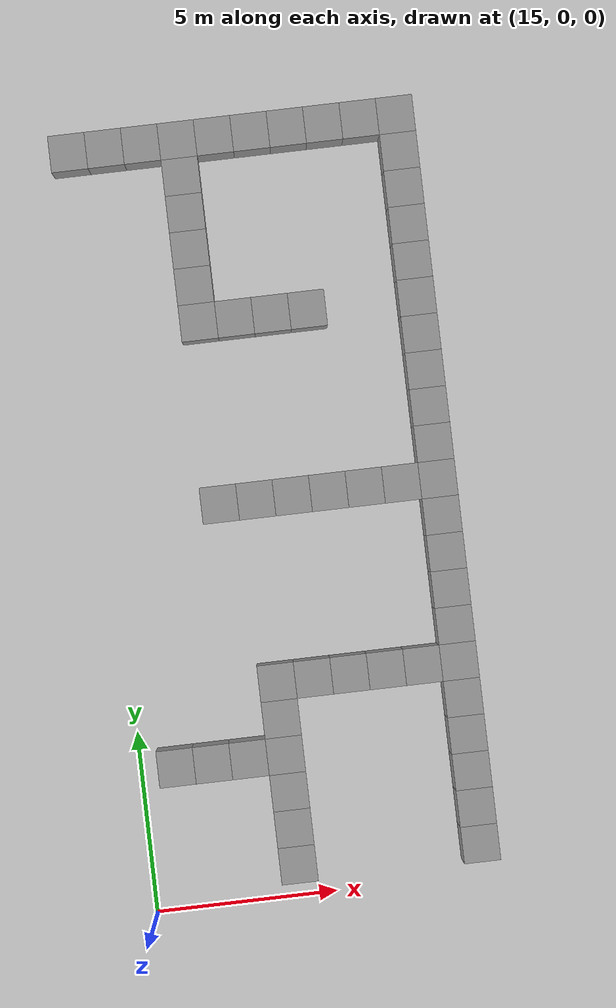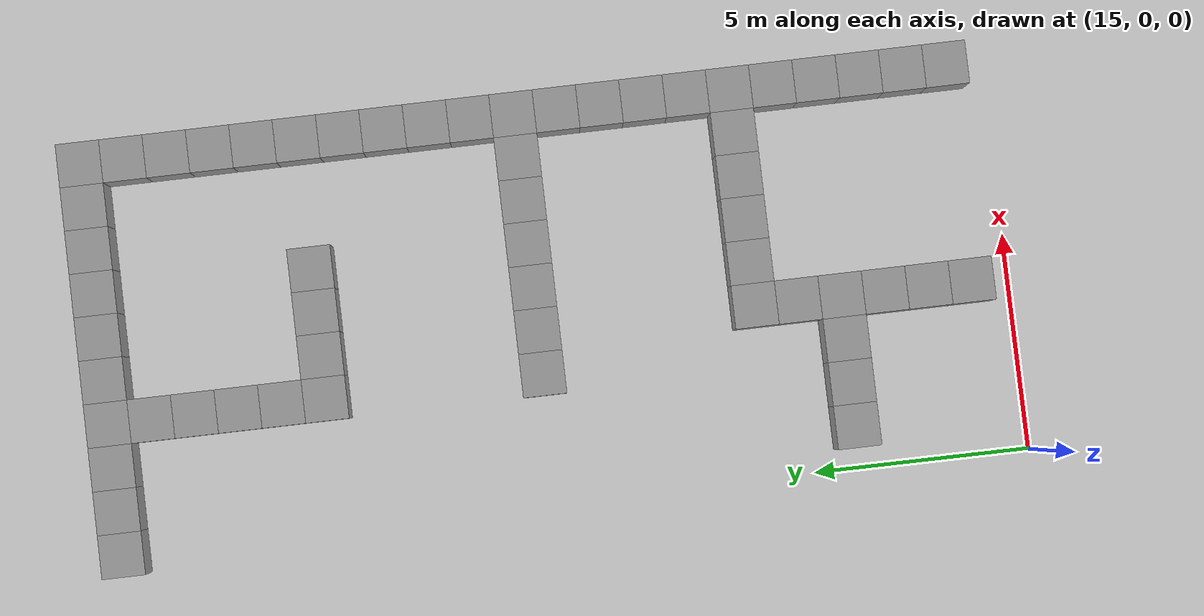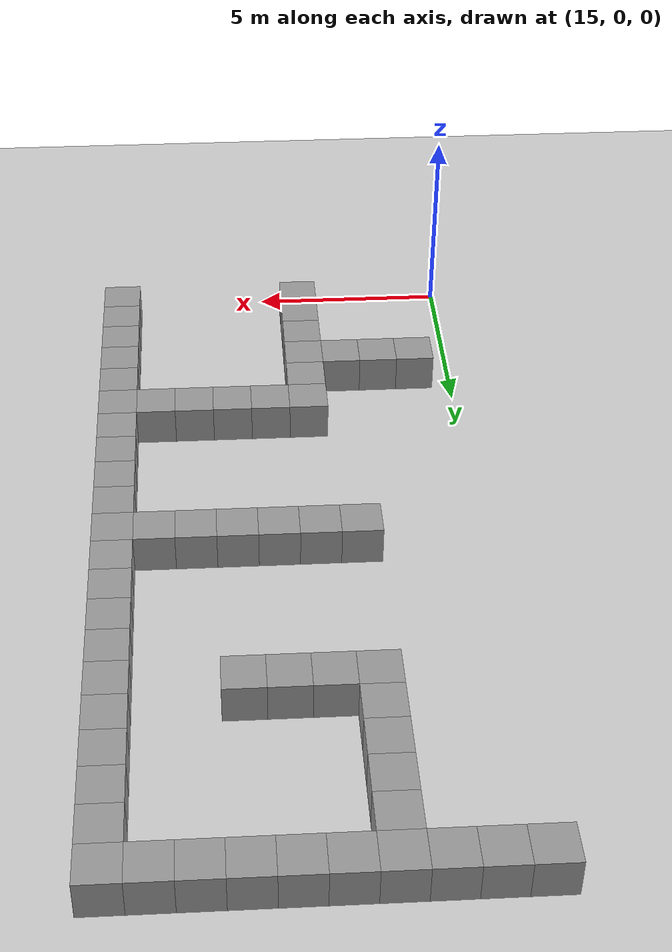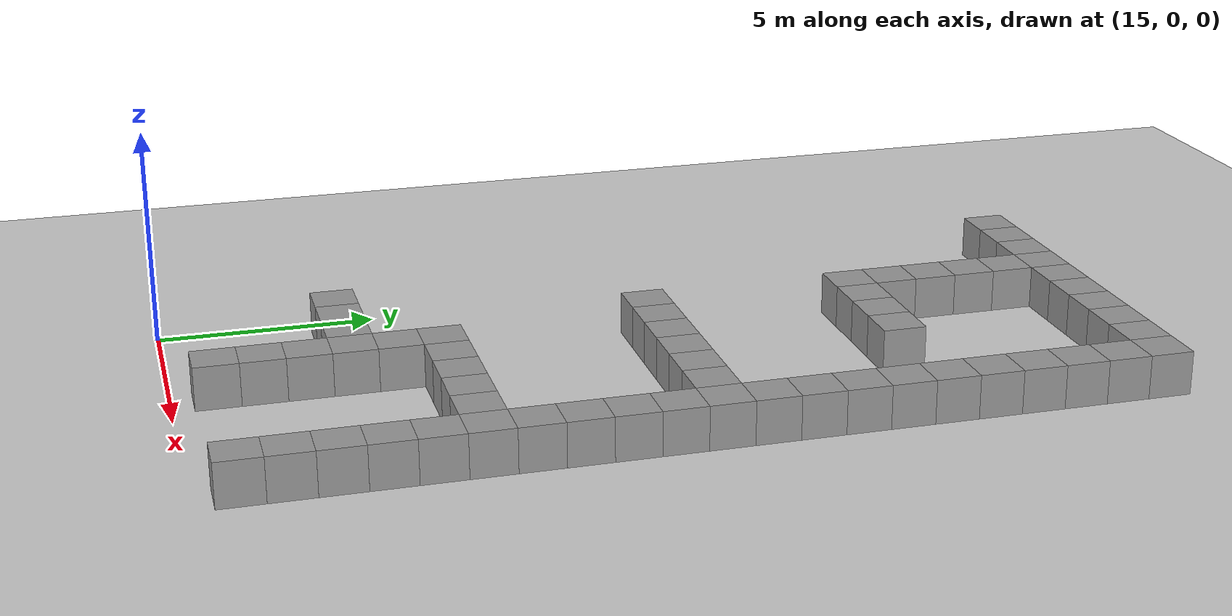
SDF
<sdf version="1.6">
 <world name="default">
  <model name="ground_plane">
   <static>1</static>
   <link name="link">
    <collision name="collision">
     <geometry><plane><normal>0 0 1</normal><size>100 100</size></plane></geometry>
     <surface><friction><ode><mu>100</mu><mu2>50</mu2></ode></friction></surface>
    </collision>
    <visual name="visual">
     <cast_shadows>0</cast_shadows>
     <geometry><plane><normal>0 0 1</normal><size>100 100</size></plane></geometry>
     <material>
      <script><uri>file://media/materials/scripts/gazebo.material</uri><name>Gazebo/Grey</name></script>
     </material>
    </visual>
    <velocity_decay><linear>0</linear><angular>0</angular></velocity_decay>
   </link>
  </model>
  <model name="unit_box_134">
   <pose>15 21 0.5 0 0 0</pose>
   <static>1</static>
   <link name="link">
    <inertial>
     <mass>1</mass>
     <inertia><ixx>1</ixx><ixy>0</ixy><ixz>0</ixz><iyy>1</iyy><iyz>0</iyz><izz>1</izz></inertia>
    </inertial>
    <collision name="collision"><geometry><box><size>1 1 1</size></box></geometry></collision>
    <visual name="visual">
     <geometry><box><size>1 1 1</size></box></geometry>
     <material>
      <script><uri>file://media/materials/scripts/gazebo.material</uri><name>Gazebo/Grey</name></script>
     </material>
    </visual>
    <velocity_decay><linear>0</linear><angular>0</angular></velocity_decay>
   </link>
   <static>0</static>
  </model>
  <model name="unit_box_135">
   <pose>16 21 0.5 0 0 0</pose>
   <static>1</static>
   <link name="link">
    <inertial>
     <mass>1</mass>
     <inertia><ixx>1</ixx><ixy>0</ixy><ixz>0</ixz><iyy>1</iyy><iyz>0</iyz><izz>1</izz></inertia>
    </inertial>
    <collision name="collision"><geometry><box><size>1 1 1</size></box></geometry></collision>
    <visual name="visual">
     <geometry><box><size>1 1 1</size></box></geometry>
     <material>
      <script><uri>file://media/materials/scripts/gazebo.material</uri><name>Gazebo/Grey</name></script>
     </material>
    </visual>
    <velocity_decay><linear>0</linear><angular>0</angular></velocity_decay>
   </link>
   <static>0</static>
  </model>
  <model name="unit_box_136">
   <pose>17 21 0.5 0 0 0</pose>
   <static>1</static>
   <link name="link">
    <inertial>
     <mass>1</mass>
     <inertia><ixx>1</ixx><ixy>0</ixy><ixz>0</ixz><iyy>1</iyy><iyz>0</iyz><izz>1</izz></inertia>
    </inertial>
    <collision name="collision"><geometry><box><size>1 1 1</size></box></geometry></collision>
    <visual name="visual">
     <geometry><box><size>1 1 1</size></box></geometry>
     <material>
      <script><uri>file://media/materials/scripts/gazebo.material</uri><name>Gazebo/Grey</name></script>
     </material>
    </visual>
    <velocity_decay><linear>0</linear><angular>0</angular></velocity_decay>
   </link>
   <static>0</static>
  </model>
  <model name="unit_box_137">
   <pose>18 21 0.5 0 0 0</pose>
   <static>1</static>
   <link name="link">
    <inertial>
     <mass>1</mass>
     <inertia><ixx>1</ixx><ixy>0</ixy><ixz>0</ixz><iyy>1</iyy><iyz>0</iyz><izz>1</izz></inertia>
    </inertial>
    <collision name="collision"><geometry><box><size>1 1 1</size></box></geometry></collision>
    <visual name="visual">
     <geometry><box><size>1 1 1</size></box></geometry>
     <material>
      <script><uri>file://media/materials/scripts/gazebo.material</uri><name>Gazebo/Grey</name></script>
     </material>
    </visual>
    <velocity_decay><linear>0</linear><angular>0</angular></velocity_decay>
   </link>
   <static>0</static>
  </model>
  <model name="unit_box_138">
   <pose>18 20 0.5 0 0 0</pose>
   <static>1</static>
   <link name="link">
    <inertial>
     <mass>1</mass>
     <inertia><ixx>1</ixx><ixy>0</ixy><ixz>0</ixz><iyy>1</iyy><iyz>0</iyz><izz>1</izz></inertia>
    </inertial>
    <collision name="collision"><geometry><box><size>1 1 1</size></box></geometry></collision>
    <visual name="visual">
     <geometry><box><size>1 1 1</size></box></geometry>
     <material>
      <script><uri>file://media/materials/scripts/gazebo.material</uri><name>Gazebo/Grey</name></script>
     </material>
    </visual>
    <velocity_decay><linear>0</linear><angular>0</angular></velocity_decay>
   </link>
   <static>0</static>
  </model>
  <model name="unit_box_139">
   <pose>18 19 0.5 0 0 0</pose>
   <static>1</static>
   <link name="link">
    <inertial>
     <mass>1</mass>
     <inertia><ixx>1</ixx><ixy>0</ixy><ixz>0</ixz><iyy>1</iyy><iyz>0</iyz><izz>1</izz></inertia>
    </inertial>
    <collision name="collision"><geometry><box><size>1 1 1</size></box></geometry></collision>
    <visual name="visual">
     <geometry><box><size>1 1 1</size></box></geometry>
     <material>
      <script><uri>file://media/materials/scripts/gazebo.material</uri><name>Gazebo/Grey</name></script>
     </material>
    </visual>
    <velocity_decay><linear>0</linear><angular>0</angular></velocity_decay>
   </link>
   <static>0</static>
  </model>
  <model name="unit_box_140">
   <pose>18 18 0.5 0 0 0</pose>
   <static>1</static>
   <link name="link">
    <inertial>
     <mass>1</mass>
     <inertia><ixx>1</ixx><ixy>0</ixy><ixz>0</ixz><iyy>1</iyy><iyz>0</iyz><izz>1</izz></inertia>
    </inertial>
    <collision name="collision"><geometry><box><size>1 1 1</size></box></geometry></collision>
    <visual name="visual">
     <geometry><box><size>1 1 1</size></box></geometry>
     <material>
      <script><uri>file://media/materials/scripts/gazebo.material</uri><name>Gazebo/Grey</name></script>
     </material>
    </visual>
    <velocity_decay><linear>0</linear><angular>0</angular></velocity_decay>
   </link>
   <static>0</static>
  </model>
  <model name="unit_box_141">
   <pose>18 17 0.5 0 0 0</pose>
   <static>1</static>
   <link name="link">
    <inertial>
     <mass>1</mass>
     <inertia><ixx>1</ixx><ixy>0</ixy><ixz>0</ixz><iyy>1</iyy><iyz>0</iyz><izz>1</izz></inertia>
    </inertial>
    <collision name="collision"><geometry><box><size>1 1 1</size></box></geometry></collision>
    <visual name="visual">
     <geometry><box><size>1 1 1</size></box></geometry>
     <material>
      <script><uri>file://media/materials/scripts/gazebo.material</uri><name>Gazebo/Grey</name></script>
     </material>
    </visual>
    <velocity_decay><linear>0</linear><angular>0</angular></velocity_decay>
   </link>
   <static>0</static>
  </model>
  <model name="unit_box_142">
   <pose>18 16 0.5 0 0 0</pose>
   <static>1</static>
   <link name="link">
    <inertial>
     <mass>1</mass>
     <inertia><ixx>1</ixx><ixy>0</ixy><ixz>0</ixz><iyy>1</iyy><iyz>0</iyz><izz>1</izz></inertia>
    </inertial>
    <collision name="collision"><geometry><box><size>1 1 1</size></box></geometry></collision>
    <visual name="visual">
     <geometry><box><size>1 1 1</size></box></geometry>
     <material>
      <script><uri>file://media/materials/scripts/gazebo.material</uri><name>Gazebo/Grey</name></script>
     </material>
    </visual>
    <velocity_decay><linear>0</linear><angular>0</angular></velocity_decay>
   </link>
   <static>0</static>
  </model>
  <model name="unit_box_143">
   <pose>19 16 0.5 0 0 0</pose>
   <static>1</static>
   <link name="link">
    <inertial>
     <mass>1</mass>
     <inertia><ixx>1</ixx><ixy>0</ixy><ixz>0</ixz><iyy>1</iyy><iyz>0</iyz><izz>1</izz></inertia>
    </inertial>
    <collision name="collision"><geometry><box><size>1 1 1</size></box></geometry></collision>
    <visual name="visual">
     <geometry><box><size>1 1 1</size></box></geometry>
     <material>
      <script><uri>file://media/materials/scripts/gazebo.material</uri><name>Gazebo/Grey</name></script>
     </material>
    </visual>
    <velocity_decay><linear>0</linear><angular>0</angular></velocity_decay>
   </link>
   <static>0</static>
  </model>
  <model name="unit_box_144">
   <pose>20 16 0.5 0 0 0</pose>
   <static>1</static>
   <link name="link">
    <inertial>
     <mass>1</mass>
     <inertia><ixx>1</ixx><ixy>0</ixy><ixz>0</ixz><iyy>1</iyy><iyz>0</iyz><izz>1</izz></inertia>
    </inertial>
    <collision name="collision"><geometry><box><size>1 1 1</size></box></geometry></collision>
    <visual name="visual">
     <geometry><box><size>1 1 1</size></box></geometry>
     <material>
      <script><uri>file://media/materials/scripts/gazebo.material</uri><name>Gazebo/Grey</name></script>
     </material>
    </visual>
    <velocity_decay><linear>0</linear><angular>0</angular></velocity_decay>
   </link>
   <static>0</static>
  </model>
  <model name="unit_box_145">
   <pose>21 16 0.5 0 0 0</pose>
   <static>1</static>
   <link name="link">
    <inertial>
     <mass>1</mass>
     <inertia><ixx>1</ixx><ixy>0</ixy><ixz>0</ixz><iyy>1</iyy><iyz>0</iyz><izz>1</izz></inertia>
    </inertial>
    <collision name="collision"><geometry><box><size>1 1 1</size></box></geometry></collision>
    <visual name="visual">
     <geometry><box><size>1 1 1</size></box></geometry>
     <material>
      <script><uri>file://media/materials/scripts/gazebo.material</uri><name>Gazebo/Grey</name></script>
     </material>
    </visual>
    <velocity_decay><linear>0</linear><angular>0</angular></velocity_decay>
   </link>
   <static>0</static>
  </model>
  <model name="unit_box_146">
   <pose>19 21 0.5 0 0 0</pose>
   <static>1</static>
   <link name="link">
    <inertial>
     <mass>1</mass>
     <inertia><ixx>1</ixx><ixy>0</ixy><ixz>0</ixz><iyy>1</iyy><iyz>0</iyz><izz>1</izz></inertia>
    </inertial>
    <collision name="collision"><geometry><box><size>1 1 1</size></box></geometry></collision>
    <visual name="visual">
     <geometry><box><size>1 1 1</size></box></geometry>
     <material>
      <script><uri>file://media/materials/scripts/gazebo.material</uri><name>Gazebo/Grey</name></script>
     </material>
    </visual>
    <velocity_decay><linear>0</linear><angular>0</angular></velocity_decay>
   </link>
   <static>0</static>
  </model>
  <model name="unit_box_147">
   <pose>20 21 0.5 0 0 0</pose>
   <static>1</static>
   <link name="link">
    <inertial>
     <mass>1</mass>
     <inertia><ixx>1</ixx><ixy>0</ixy><ixz>0</ixz><iyy>1</iyy><iyz>0</iyz><izz>1</izz></inertia>
    </inertial>
    <collision name="collision"><geometry><box><size>1 1 1</size></box></geometry></collision>
    <visual name="visual">
     <geometry><box><size>1 1 1</size></box></geometry>
     <material>
      <script><uri>file://media/materials/scripts/gazebo.material</uri><name>Gazebo/Grey</name></script>
     </material>
    </visual>
    <velocity_decay><linear>0</linear><angular>0</angular></velocity_decay>
   </link>
   <static>0</static>
  </model>
  <model name="unit_box_148">
   <pose>21 21 0.5 0 0 0</pose>
   <static>1</static>
   <link name="link">
    <inertial>
     <mass>1</mass>
     <inertia><ixx>1</ixx><ixy>0</ixy><ixz>0</ixz><iyy>1</iyy><iyz>0</iyz><izz>1</izz></inertia>
    </inertial>
    <collision name="collision"><geometry><box><size>1 1 1</size></box></geometry></collision>
    <visual name="visual">
     <geometry><box><size>1 1 1</size></box></geometry>
     <material>
      <script><uri>file://media/materials/scripts/gazebo.material</uri><name>Gazebo/Grey</name></script>
     </material>
    </visual>
    <velocity_decay><linear>0</linear><angular>0</angular></velocity_decay>
   </link>
   <static>0</static>
  </model>
  <model name="unit_box_150">
   <pose>22 21 0.5 0 0 0</pose>
   <static>1</static>
   <link name="link">
    <inertial>
     <mass>1</mass>
     <inertia><ixx>1</ixx><ixy>0</ixy><ixz>0</ixz><iyy>1</iyy><iyz>0</iyz><izz>1</izz></inertia>
    </inertial>
    <collision name="collision"><geometry><box><size>1 1 1</size></box></geometry></collision>
    <visual name="visual">
     <geometry><box><size>1 1 1</size></box></geometry>
     <material>
      <script><uri>file://media/materials/scripts/gazebo.material</uri><name>Gazebo/Grey</name></script>
     </material>
    </visual>
    <velocity_decay><linear>0</linear><angular>0</angular></velocity_decay>
   </link>
   <static>0</static>
  </model>
  <model name="unit_box_151">
   <pose>23 21 0.5 0 0 0</pose>
   <static>1</static>
   <link name="link">
    <inertial>
     <mass>1</mass>
     <inertia><ixx>1</ixx><ixy>0</ixy><ixz>0</ixz><iyy>1</iyy><iyz>0</iyz><izz>1</izz></inertia>
    </inertial>
    <collision name="collision"><geometry><box><size>1 1 1</size></box></geometry></collision>
    <visual name="visual">
     <geometry><box><size>1 1 1</size></box></geometry>
     <material>
      <script><uri>file://media/materials/scripts/gazebo.material</uri><name>Gazebo/Grey</name></script>
     </material>
    </visual>
    <velocity_decay><linear>0</linear><angular>0</angular></velocity_decay>
   </link>
   <static>0</static>
  </model>
  <model name="unit_box_152">
   <pose>24 21 0.5 0 0 0</pose>
   <static>1</static>
   <link name="link">
    <inertial>
     <mass>1</mass>
     <inertia><ixx>1</ixx><ixy>0</ixy><ixz>0</ixz><iyy>1</iyy><iyz>0</iyz><izz>1</izz></inertia>
    </inertial>
    <collision name="collision"><geometry><box><size>1 1 1</size></box></geometry></collision>
    <visual name="visual">
     <geometry><box><size>1 1 1</size></box></geometry>
     <material>
      <script><uri>file://media/materials/scripts/gazebo.material</uri><name>Gazebo/Grey</name></script>
     </material>
    </visual>
    <velocity_decay><linear>0</linear><angular>0</angular></velocity_decay>
   </link>
   <static>0</static>
  </model>
  <model name="unit_box_153">
   <pose>24 20 0.5 0 0 0</pose>
   <static>1</static>
   <link name="link">
    <inertial>
     <mass>1</mass>
     <inertia><ixx>1</ixx><ixy>0</ixy><ixz>0</ixz><iyy>1</iyy><iyz>0</iyz><izz>1</izz></inertia>
    </inertial>
    <collision name="collision"><geometry><box><size>1 1 1</size></box></geometry></collision>
    <visual name="visual">
     <geometry><box><size>1 1 1</size></box></geometry>
     <material>
      <script><uri>file://media/materials/scripts/gazebo.material</uri><name>Gazebo/Grey</name></script>
     </material>
    </visual>
    <velocity_decay><linear>0</linear><angular>0</angular></velocity_decay>
   </link>
   <static>0</static>
  </model>
  <model name="unit_box_154">
   <pose>24 19 0.5 0 0 0</pose>
   <static>1</static>
   <link name="link">
    <inertial>
     <mass>1</mass>
     <inertia><ixx>1</ixx><ixy>0</ixy><ixz>0</ixz><iyy>1</iyy><iyz>0</iyz><izz>1</izz></inertia>
    </inertial>
    <collision name="collision"><geometry><box><size>1 1 1</size></box></geometry></collision>
    <visual name="visual">
     <geometry><box><size>1 1 1</size></box></geometry>
     <material>
      <script><uri>file://media/materials/scripts/gazebo.material</uri><name>Gazebo/Grey</name></script>
     </material>
    </visual>
    <velocity_decay><linear>0</linear><angular>0</angular></velocity_decay>
   </link>
   <static>0</static>
  </model>
  <model name="unit_box_155">
   <pose>24 18 0.5 0 0 0</pose>
   <static>1</static>
   <link name="link">
    <inertial>
     <mass>1</mass>
     <inertia><ixx>1</ixx><ixy>0</ixy><ixz>0</ixz><iyy>1</iyy><iyz>0</iyz><izz>1</izz></inertia>
    </inertial>
    <collision name="collision"><geometry><box><size>1 1 1</size></box></geometry></collision>
    <visual name="visual">
     <geometry><box><size>1 1 1</size></box></geometry>
     <material>
      <script><uri>file://media/materials/scripts/gazebo.material</uri><name>Gazebo/Grey</name></script>
     </material>
    </visual>
    <velocity_decay><linear>0</linear><angular>0</angular></velocity_decay>
   </link>
   <static>0</static>
  </model>
  <model name="unit_box_156">
   <pose>24 17 0.5 0 0 0</pose>
   <static>1</static>
   <link name="link">
    <inertial>
     <mass>1</mass>
     <inertia><ixx>1</ixx><ixy>0</ixy><ixz>0</ixz><iyy>1</iyy><iyz>0</iyz><izz>1</izz></inertia>
    </inertial>
    <collision name="collision"><geometry><box><size>1 1 1</size></box></geometry></collision>
    <visual name="visual">
     <geometry><box><size>1 1 1</size></box></geometry>
     <material>
      <script><uri>file://media/materials/scripts/gazebo.material</uri><name>Gazebo/Grey</name></script>
     </material>
    </visual>
    <velocity_decay><linear>0</linear><angular>0</angular></velocity_decay>
   </link>
   <static>0</static>
  </model>
  <model name="unit_box_157">
   <pose>24 16 0.5 0 0 0</pose>
   <static>1</static>
   <link name="link">
    <inertial>
     <mass>1</mass>
     <inertia><ixx>1</ixx><ixy>0</ixy><ixz>0</ixz><iyy>1</iyy><iyz>0</iyz><izz>1</izz></inertia>
    </inertial>
    <collision name="collision"><geometry><box><size>1 1 1</size></box></geometry></collision>
    <visual name="visual">
     <geometry><box><size>1 1 1</size></box></geometry>
     <material>
      <script><uri>file://media/materials/scripts/gazebo.material</uri><name>Gazebo/Grey</name></script>
     </material>
    </visual>
    <velocity_decay><linear>0</linear><angular>0</angular></velocity_decay>
   </link>
   <static>0</static>
  </model>
  <model name="unit_box_158">
   <pose>24 15 0.5 0 0 0</pose>
   <static>1</static>
   <link name="link">
    <inertial>
     <mass>1</mass>
     <inertia><ixx>1</ixx><ixy>0</ixy><ixz>0</ixz><iyy>1</iyy><iyz>0</iyz><izz>1</izz></inertia>
    </inertial>
    <collision name="collision"><geometry><box><size>1 1 1</size></box></geometry></collision>
    <visual name="visual">
     <geometry><box><size>1 1 1</size></box></geometry>
     <material>
      <script><uri>file://media/materials/scripts/gazebo.material</uri><name>Gazebo/Grey</name></script>
     </material>
    </visual>
    <velocity_decay><linear>0</linear><angular>0</angular></velocity_decay>
   </link>
   <static>0</static>
  </model>
  <model name="unit_box_159">
   <pose>24 14 0.5 0 0 0</pose>
   <static>1</static>
   <link name="link">
    <inertial>
     <mass>1</mass>
     <inertia><ixx>1</ixx><ixy>0</ixy><ixz>0</ixz><iyy>1</iyy><iyz>0</iyz><izz>1</izz></inertia>
    </inertial>
    <collision name="collision"><geometry><box><size>1 1 1</size></box></geometry></collision>
    <visual name="visual">
     <geometry><box><size>1 1 1</size></box></geometry>
     <material>
      <script><uri>file://media/materials/scripts/gazebo.material</uri><name>Gazebo/Grey</name></script>
     </material>
    </visual>
    <velocity_decay><linear>0</linear><angular>0</angular></velocity_decay>
   </link>
   <static>0</static>
  </model>
  <model name="unit_box_160">
   <pose>24 13 0.5 0 0 0</pose>
   <static>1</static>
   <link name="link">
    <inertial>
     <mass>1</mass>
     <inertia><ixx>1</ixx><ixy>0</ixy><ixz>0</ixz><iyy>1</iyy><iyz>0</iyz><izz>1</izz></inertia>
    </inertial>
    <collision name="collision"><geometry><box><size>1 1 1</size></box></geometry></collision>
    <visual name="visual">
     <geometry><box><size>1 1 1</size></box></geometry>
     <material>
      <script><uri>file://media/materials/scripts/gazebo.material</uri><name>Gazebo/Grey</name></script>
     </material>
    </visual>
    <velocity_decay><linear>0</linear><angular>0</angular></velocity_decay>
   </link>
   <static>0</static>
  </model>
  <model name="unit_box_161">
   <pose>24 12 0.5 0 0 0</pose>
   <static>1</static>
   <link name="link">
    <inertial>
     <mass>1</mass>
     <inertia><ixx>1</ixx><ixy>0</ixy><ixz>0</ixz><iyy>1</iyy><iyz>0</iyz><izz>1</izz></inertia>
    </inertial>
    <collision name="collision"><geometry><box><size>1 1 1</size></box></geometry></collision>
    <visual name="visual">
     <geometry><box><size>1 1 1</size></box></geometry>
     <material>
      <script><uri>file://media/materials/scripts/gazebo.material</uri><name>Gazebo/Grey</name></script>
     </material>
    </visual>
    <velocity_decay><linear>0</linear><angular>0</angular></velocity_decay>
   </link>
   <static>0</static>
  </model>
  <model name="unit_box_162">
   <pose>24 11 0.5 0 0 0</pose>
   <static>1</static>
   <link name="link">
    <inertial>
     <mass>1</mass>
     <inertia><ixx>1</ixx><ixy>0</ixy><ixz>0</ixz><iyy>1</iyy><iyz>0</iyz><izz>1</izz></inertia>
    </inertial>
    <collision name="collision"><geometry><box><size>1 1 1</size></box></geometry></collision>
    <visual name="visual">
     <geometry><box><size>1 1 1</size></box></geometry>
     <material>
      <script><uri>file://media/materials/scripts/gazebo.material</uri><name>Gazebo/Grey</name></script>
     </material>
    </visual>
    <velocity_decay><linear>0</linear><angular>0</angular></velocity_decay>
   </link>
   <static>0</static>
  </model>
  <model name="unit_box_163">
   <pose>23 11 0.5 0 0 0</pose>
   <static>1</static>
   <link name="link">
    <inertial>
     <mass>1</mass>
     <inertia><ixx>1</ixx><ixy>0</ixy><ixz>0</ixz><iyy>1</iyy><iyz>0</iyz><izz>1</izz></inertia>
    </inertial>
    <collision name="collision"><geometry><box><size>1 1 1</size></box></geometry></collision>
    <visual name="visual">
     <geometry><box><size>1 1 1</size></box></geometry>
     <material>
      <script><uri>file://media/materials/scripts/gazebo.material</uri><name>Gazebo/Grey</name></script>
     </material>
    </visual>
    <velocity_decay><linear>0</linear><angular>0</angular></velocity_decay>
   </link>
   <static>0</static>
  </model>
  <model name="unit_box_164">
   <pose>22 11 0.5 0 0 0</pose>
   <static>1</static>
   <link name="link">
    <inertial>
     <mass>1</mass>
     <inertia><ixx>1</ixx><ixy>0</ixy><ixz>0</ixz><iyy>1</iyy><iyz>0</iyz><izz>1</izz></inertia>
    </inertial>
    <collision name="collision"><geometry><box><size>1 1 1</size></box></geometry></collision>
    <visual name="visual">
     <geometry><box><size>1 1 1</size></box></geometry>
     <material>
      <script><uri>file://media/materials/scripts/gazebo.material</uri><name>Gazebo/Grey</name></script>
     </material>
    </visual>
    <velocity_decay><linear>0</linear><angular>0</angular></velocity_decay>
   </link>
   <static>0</static>
  </model>
  <model name="unit_box_165">
   <pose>21 11 0.5 0 0 0</pose>
   <static>1</static>
   <link name="link">
    <inertial>
     <mass>1</mass>
     <inertia><ixx>1</ixx><ixy>0</ixy><ixz>0</ixz><iyy>1</iyy><iyz>0</iyz><izz>1</izz></inertia>
    </inertial>
    <collision name="collision"><geometry><box><size>1 1 1</size></box></geometry></collision>
    <visual name="visual">
     <geometry><box><size>1 1 1</size></box></geometry>
     <material>
      <script><uri>file://media/materials/scripts/gazebo.material</uri><name>Gazebo/Grey</name></script>
     </material>
    </visual>
    <velocity_decay><linear>0</linear><angular>0</angular></velocity_decay>
   </link>
   <static>0</static>
  </model>
  <model name="unit_box_166">
   <pose>20 11 0.5 0 0 0</pose>
   <static>1</static>
   <link name="link">
    <inertial>
     <mass>1</mass>
     <inertia><ixx>1</ixx><ixy>0</ixy><ixz>0</ixz><iyy>1</iyy><iyz>0</iyz><izz>1</izz></inertia>
    </inertial>
    <collision name="collision"><geometry><box><size>1 1 1</size></box></geometry></collision>
    <visual name="visual">
     <geometry><box><size>1 1 1</size></box></geometry>
     <material>
      <script><uri>file://media/materials/scripts/gazebo.material</uri><name>Gazebo/Grey</name></script>
     </material>
    </visual>
    <velocity_decay><linear>0</linear><angular>0</angular></velocity_decay>
   </link>
   <static>0</static>
  </model>
  <model name="unit_box_167">
   <pose>19 11 0.5 0 0 0</pose>
   <static>1</static>
   <link name="link">
    <inertial>
     <mass>1</mass>
     <inertia><ixx>1</ixx><ixy>0</ixy><ixz>0</ixz><iyy>1</iyy><iyz>0</iyz><izz>1</izz></inertia>
    </inertial>
    <collision name="collision"><geometry><box><size>1 1 1</size></box></geometry></collision>
    <visual name="visual">
     <geometry><box><size>1 1 1</size></box></geometry>
     <material>
      <script><uri>file://media/materials/scripts/gazebo.material</uri><name>Gazebo/Grey</name></script>
     </material>
    </visual>
    <velocity_decay><linear>0</linear><angular>0</angular></velocity_decay>
   </link>
   <static>0</static>
  </model>
  <model name="unit_box_168">
   <pose>18 11 0.5 0 0 0</pose>
   <static>1</static>
   <link name="link">
    <inertial>
     <mass>1</mass>
     <inertia><ixx>1</ixx><ixy>0</ixy><ixz>0</ixz><iyy>1</iyy><iyz>0</iyz><izz>1</izz></inertia>
    </inertial>
    <collision name="collision"><geometry><box><size>1 1 1</size></box></geometry></collision>
    <visual name="visual">
     <geometry><box><size>1 1 1</size></box></geometry>
     <material>
      <script><uri>file://media/materials/scripts/gazebo.material</uri><name>Gazebo/Grey</name></script>
     </material>
    </visual>
    <velocity_decay><linear>0</linear><angular>0</angular></velocity_decay>
   </link>
   <static>0</static>
  </model>
  <model name="unit_box_178">
   <pose>16 4 0.5 0 0 0</pose>
   <static>1</static>
   <link name="link">
    <inertial>
     <mass>1</mass>
     <inertia><ixx>1</ixx><ixy>0</ixy><ixz>0</ixz><iyy>1</iyy><iyz>0</iyz><izz>1</izz></inertia>
    </inertial>
    <collision name="collision"><geometry><box><size>1 1 1</size></box></geometry></collision>
    <visual name="visual">
     <geometry><box><size>1 1 1</size></box></geometry>
     <material>
      <script><uri>file://media/materials/scripts/gazebo.material</uri><name>Gazebo/Grey</name></script>
     </material>
    </visual>
    <velocity_decay><linear>0</linear><angular>0</angular></velocity_decay>
   </link>
   <static>0</static>
  </model>
  <model name="unit_box_179">
   <pose>17 4 0.5 0 0 0</pose>
   <static>1</static>
   <link name="link">
    <inertial>
     <mass>1</mass>
     <inertia><ixx>1</ixx><ixy>0</ixy><ixz>0</ixz><iyy>1</iyy><iyz>0</iyz><izz>1</izz></inertia>
    </inertial>
    <collision name="collision"><geometry><box><size>1 1 1</size></box></geometry></collision>
    <visual name="visual">
     <geometry><box><size>1 1 1</size></box></geometry>
     <material>
      <script><uri>file://media/materials/scripts/gazebo.material</uri><name>Gazebo/Grey</name></script>
     </material>
    </visual>
    <velocity_decay><linear>0</linear><angular>0</angular></velocity_decay>
   </link>
   <static>0</static>
  </model>
  <model name="unit_box_180">
   <pose>18 4 0.5 0 0 0</pose>
   <static>1</static>
   <link name="link">
    <inertial>
     <mass>1</mass>
     <inertia><ixx>1</ixx><ixy>0</ixy><ixz>0</ixz><iyy>1</iyy><iyz>0</iyz><izz>1</izz></inertia>
    </inertial>
    <collision name="collision"><geometry><box><size>1 1 1</size></box></geometry></collision>
    <visual name="visual">
     <geometry><box><size>1 1 1</size></box></geometry>
     <material>
      <script><uri>file://media/materials/scripts/gazebo.material</uri><name>Gazebo/Grey</name></script>
     </material>
    </visual>
    <velocity_decay><linear>0</linear><angular>0</angular></velocity_decay>
   </link>
   <static>0</static>
  </model>
  <model name="unit_box_181">
   <pose>19 4 0.5 0 0 0</pose>
   <static>1</static>
   <link name="link">
    <inertial>
     <mass>1</mass>
     <inertia><ixx>1</ixx><ixy>0</ixy><ixz>0</ixz><iyy>1</iyy><iyz>0</iyz><izz>1</izz></inertia>
    </inertial>
    <collision name="collision"><geometry><box><size>1 1 1</size></box></geometry></collision>
    <visual name="visual">
     <geometry><box><size>1 1 1</size></box></geometry>
     <material>
      <script><uri>file://media/materials/scripts/gazebo.material</uri><name>Gazebo/Grey</name></script>
     </material>
    </visual>
    <velocity_decay><linear>0</linear><angular>0</angular></velocity_decay>
   </link>
   <static>0</static>
  </model>
  <model name="unit_box_183">
   <pose>19 5 0.5 0 0 0</pose>
   <static>1</static>
   <link name="link">
    <inertial>
     <mass>1</mass>
     <inertia><ixx>1</ixx><ixy>0</ixy><ixz>0</ixz><iyy>1</iyy><iyz>0</iyz><izz>1</izz></inertia>
    </inertial>
    <collision name="collision"><geometry><box><size>1 1 1</size></box></geometry></collision>
    <visual name="visual">
     <geometry><box><size>1 1 1</size></box></geometry>
     <material>
      <script><uri>file://media/materials/scripts/gazebo.material</uri><name>Gazebo/Grey</name></script>
     </material>
    </visual>
    <velocity_decay><linear>0</linear><angular>0</angular></velocity_decay>
   </link>
   <static>0</static>
  </model>
  <model name="unit_box_184">
   <pose>19 6 0.5 0 0 0</pose>
   <static>1</static>
   <link name="link">
    <inertial>
     <mass>1</mass>
     <inertia><ixx>1</ixx><ixy>0</ixy><ixz>0</ixz><iyy>1</iyy><iyz>0</iyz><izz>1</izz></inertia>
    </inertial>
    <collision name="collision"><geometry><box><size>1 1 1</size></box></geometry></collision>
    <visual name="visual">
     <geometry><box><size>1 1 1</size></box></geometry>
     <material>
      <script><uri>file://media/materials/scripts/gazebo.material</uri><name>Gazebo/Grey</name></script>
     </material>
    </visual>
    <velocity_decay><linear>0</linear><angular>0</angular></velocity_decay>
   </link>
   <static>0</static>
  </model>
  <model name="unit_box_185">
   <pose>21 6 0.5 0 0 0</pose>
   <static>1</static>
   <link name="link">
    <inertial>
     <mass>1</mass>
     <inertia><ixx>1</ixx><ixy>0</ixy><ixz>0</ixz><iyy>1</iyy><iyz>0</iyz><izz>1</izz></inertia>
    </inertial>
    <collision name="collision"><geometry><box><size>1 1 1</size></box></geometry></collision>
    <visual name="visual">
     <geometry><box><size>1 1 1</size></box></geometry>
     <material>
      <script><uri>file://media/materials/scripts/gazebo.material</uri><name>Gazebo/Grey</name></script>
     </material>
    </visual>
    <velocity_decay><linear>0</linear><angular>0</angular></velocity_decay>
   </link>
   <static>0</static>
  </model>
  <model name="unit_box_186">
   <pose>22 6 0.5 0 0 0</pose>
   <static>1</static>
   <link name="link">
    <inertial>
     <mass>1</mass>
     <inertia><ixx>1</ixx><ixy>0</ixy><ixz>0</ixz><iyy>1</iyy><iyz>0</iyz><izz>1</izz></inertia>
    </inertial>
    <collision name="collision"><geometry><box><size>1 1 1</size></box></geometry></collision>
    <visual name="visual">
     <geometry><box><size>1 1 1</size></box></geometry>
     <material>
      <script><uri>file://media/materials/scripts/gazebo.material</uri><name>Gazebo/Grey</name></script>
     </material>
    </visual>
    <velocity_decay><linear>0</linear><angular>0</angular></velocity_decay>
   </link>
   <static>0</static>
  </model>
  <model name="unit_box_187">
   <pose>23 6 0.5 0 0 0</pose>
   <static>1</static>
   <link name="link">
    <inertial>
     <mass>1</mass>
     <inertia><ixx>1</ixx><ixy>0</ixy><ixz>0</ixz><iyy>1</iyy><iyz>0</iyz><izz>1</izz></inertia>
    </inertial>
    <collision name="collision"><geometry><box><size>1 1 1</size></box></geometry></collision>
    <visual name="visual">
     <geometry><box><size>1 1 1</size></box></geometry>
     <material>
      <script><uri>file://media/materials/scripts/gazebo.material</uri><name>Gazebo/Grey</name></script>
     </material>
    </visual>
    <velocity_decay><linear>0</linear><angular>0</angular></velocity_decay>
   </link>
   <static>0</static>
  </model>
  <model name="unit_box_188">
   <pose>24 10 0.5 0 0 0</pose>
   <static>1</static>
   <link name="link">
    <inertial>
     <mass>1</mass>
     <inertia><ixx>1</ixx><ixy>0</ixy><ixz>0</ixz><iyy>1</iyy><iyz>0</iyz><izz>1</izz></inertia>
    </inertial>
    <collision name="collision"><geometry><box><size>1 1 1</size></box></geometry></collision>
    <visual name="visual">
     <geometry><box><size>1 1 1</size></box></geometry>
     <material>
      <script><uri>file://media/materials/scripts/gazebo.material</uri><name>Gazebo/Grey</name></script>
     </material>
    </visual>
    <velocity_decay><linear>0</linear><angular>0</angular></velocity_decay>
   </link>
   <static>0</static>
  </model>
  <model name="unit_box_189">
   <pose>24 9 0.5 0 0 0</pose>
   <static>1</static>
   <link name="link">
    <inertial>
     <mass>1</mass>
     <inertia><ixx>1</ixx><ixy>0</ixy><ixz>0</ixz><iyy>1</iyy><iyz>0</iyz><izz>1</izz></inertia>
    </inertial>
    <collision name="collision"><geometry><box><size>1 1 1</size></box></geometry></collision>
    <visual name="visual">
     <geometry><box><size>1 1 1</size></box></geometry>
     <material>
      <script><uri>file://media/materials/scripts/gazebo.material</uri><name>Gazebo/Grey</name></script>
     </material>
    </visual>
    <velocity_decay><linear>0</linear><angular>0</angular></velocity_decay>
   </link>
   <static>0</static>
  </model>
  <model name="unit_box_190">
   <pose>24 8 0.5 0 0 0</pose>
   <static>1</static>
   <link name="link">
    <inertial>
     <mass>1</mass>
     <inertia><ixx>1</ixx><ixy>0</ixy><ixz>0</ixz><iyy>1</iyy><iyz>0</iyz><izz>1</izz></inertia>
    </inertial>
    <collision name="collision"><geometry><box><size>1 1 1</size></box></geometry></collision>
    <visual name="visual">
     <geometry><box><size>1 1 1</size></box></geometry>
     <material>
      <script><uri>file://media/materials/scripts/gazebo.material</uri><name>Gazebo/Grey</name></script>
     </material>
    </visual>
    <velocity_decay><linear>0</linear><angular>0</angular></velocity_decay>
   </link>
   <static>0</static>
  </model>
  <model name="unit_box_191">
   <pose>24 7 0.5 0 0 0</pose>
   <static>1</static>
   <link name="link">
    <inertial>
     <mass>1</mass>
     <inertia><ixx>1</ixx><ixy>0</ixy><ixz>0</ixz><iyy>1</iyy><iyz>0</iyz><izz>1</izz></inertia>
    </inertial>
    <collision name="collision"><geometry><box><size>1 1 1</size></box></geometry></collision>
    <visual name="visual">
     <geometry><box><size>1 1 1</size></box></geometry>
     <material>
      <script><uri>file://media/materials/scripts/gazebo.material</uri><name>Gazebo/Grey</name></script>
     </material>
    </visual>
    <velocity_decay><linear>0</linear><angular>0</angular></velocity_decay>
   </link>
   <static>0</static>
  </model>
  <model name="unit_box_192">
   <pose>24 6 0.5 0 0 0</pose>
   <static>1</static>
   <link name="link">
    <inertial>
     <mass>1</mass>
     <inertia><ixx>1</ixx><ixy>0</ixy><ixz>0</ixz><iyy>1</iyy><iyz>0</iyz><izz>1</izz></inertia>
    </inertial>
    <collision name="collision"><geometry><box><size>1 1 1</size></box></geometry></collision>
    <visual name="visual">
     <geometry><box><size>1 1 1</size></box></geometry>
     <material>
      <script><uri>file://media/materials/scripts/gazebo.material</uri><name>Gazebo/Grey</name></script>
     </material>
    </visual>
    <velocity_decay><linear>0</linear><angular>0</angular></velocity_decay>
   </link>
   <static>0</static>
  </model>
  <model name="unit_box_193">
   <pose>20 6 0.5 0 0 0</pose>
   <static>1</static>
   <link name="link">
    <inertial>
     <mass>1</mass>
     <inertia><ixx>1</ixx><ixy>0</ixy><ixz>0</ixz><iyy>1</iyy><iyz>0</iyz><izz>1</izz></inertia>
    </inertial>
    <collision name="collision"><geometry><box><size>1 1 1</size></box></geometry></collision>
    <visual name="visual">
     <geometry><box><size>1 1 1</size></box></geometry>
     <material>
      <script><uri>file://media/materials/scripts/gazebo.material</uri><name>Gazebo/Grey</name></script>
     </material>
    </visual>
    <velocity_decay><linear>0</linear><angular>0</angular></velocity_decay>
   </link>
   <static>0</static>
  </model>
  <model name="unit_box_194">
   <pose>24 5 0.5 0 0 0</pose>
   <static>1</static>
   <link name="link">
    <inertial>
     <mass>1</mass>
     <inertia><ixx>1</ixx><ixy>0</ixy><ixz>0</ixz><iyy>1</iyy><iyz>0</iyz><izz>1</izz></inertia>
    </inertial>
    <collision name="collision"><geometry><box><size>1 1 1</size></box></geometry></collision>
    <visual name="visual">
     <geometry><box><size>1 1 1</size></box></geometry>
     <material>
      <script><uri>file://media/materials/scripts/gazebo.material</uri><name>Gazebo/Grey</name></script>
     </material>
    </visual>
    <velocity_decay><linear>0</linear><angular>0</angular></velocity_decay>
   </link>
   <static>0</static>
  </model>
  <model name="unit_box_195">
   <pose>24 4 0.5 0 0 0</pose>
   <static>1</static>
   <link name="link">
    <inertial>
     <mass>1</mass>
     <inertia><ixx>1</ixx><ixy>0</ixy><ixz>0</ixz><iyy>1</iyy><iyz>0</iyz><izz>1</izz></inertia>
    </inertial>
    <collision name="collision"><geometry><box><size>1 1 1</size></box></geometry></collision>
    <visual name="visual">
     <geometry><box><size>1 1 1</size></box></geometry>
     <material>
      <script><uri>file://media/materials/scripts/gazebo.material</uri><name>Gazebo/Grey</name></script>
     </material>
    </visual>
    <velocity_decay><linear>0</linear><angular>0</angular></velocity_decay>
   </link>
   <static>0</static>
  </model>
  <model name="unit_box_196">
   <pose>24 3 0.5 0 0 0</pose>
   <static>1</static>
   <link name="link">
    <inertial>
     <mass>1</mass>
     <inertia><ixx>1</ixx><ixy>0</ixy><ixz>0</ixz><iyy>1</iyy><iyz>0</iyz><izz>1</izz></inertia>
    </inertial>
    <collision name="collision"><geometry><box><size>1 1 1</size></box></geometry></collision>
    <visual name="visual">
     <geometry><box><size>1 1 1</size></box></geometry>
     <material>
      <script><uri>file://media/materials/scripts/gazebo.material</uri><name>Gazebo/Grey</name></script>
     </material>
    </visual>
    <velocity_decay><linear>0</linear><angular>0</angular></velocity_decay>
   </link>
   <static>0</static>
  </model>
  <model name="unit_box_197">
   <pose>24 2 0.5 0 0 0</pose>
   <static>1</static>
   <link name="link">
    <inertial>
     <mass>1</mass>
     <inertia><ixx>1</ixx><ixy>0</ixy><ixz>0</ixz><iyy>1</iyy><iyz>0</iyz><izz>1</izz></inertia>
    </inertial>
    <collision name="collision"><geometry><box><size>1 1 1</size></box></geometry></collision>
    <visual name="visual">
     <geometry><box><size>1 1 1</size></box></geometry>
     <material>
      <script><uri>file://media/materials/scripts/gazebo.material</uri><name>Gazebo/Grey</name></script>
     </material>
    </visual>
    <velocity_decay><linear>0</linear><angular>0</angular></velocity_decay>
   </link>
   <static>0</static>
  </model>
  <model name="unit_box_198">
   <pose>24 1 0.5 0 0 0</pose>
   <static>1</static>
   <link name="link">
    <inertial>
     <mass>1</mass>
     <inertia><ixx>1</ixx><ixy>0</ixy><ixz>0</ixz><iyy>1</iyy><iyz>0</iyz><izz>1</izz></inertia>
    </inertial>
    <collision name="collision"><geometry><box><size>1 1 1</size></box></geometry></collision>
    <visual name="visual">
     <geometry><box><size>1 1 1</size></box></geometry>
     <material>
      <script><uri>file://media/materials/scripts/gazebo.material</uri><name>Gazebo/Grey</name></script>
     </material>
    </visual>
    <velocity_decay><linear>0</linear><angular>0</angular></velocity_decay>
   </link>
   <static>0</static>
  </model>
  <model name="unit_box_200">
   <pose>19 3 0.5 0 0 0</pose>
   <static>1</static>
   <link name="link">
    <inertial>
     <mass>1</mass>
     <inertia><ixx>1</ixx><ixy>0</ixy><ixz>0</ixz><iyy>1</iyy><iyz>0</iyz><izz>1</izz></inertia>
    </inertial>
    <collision name="collision"><geometry><box><size>1 1 1</size></box></geometry></collision>
    <visual name="visual">
     <geometry><box><size>1 1 1</size></box></geometry>
     <material>
      <script><uri>file://media/materials/scripts/gazebo.material</uri><name>Gazebo/Grey</name></script>
     </material>
    </visual>
    <velocity_decay><linear>0</linear><angular>0</angular></velocity_decay>
   </link>
   <static>0</static>
  </model>
  <model name="unit_box_201">
   <pose>19 2 0.5 0 0 0</pose>
   <static>1</static>
   <link name="link">
    <inertial>
     <mass>1</mass>
     <inertia><ixx>1</ixx><ixy>0</ixy><ixz>0</ixz><iyy>1</iyy><iyz>0</iyz><izz>1</izz></inertia>
    </inertial>
    <collision name="collision"><geometry><box><size>1 1 1</size></box></geometry></collision>
    <visual name="visual">
     <geometry><box><size>1 1 1</size></box></geometry>
     <material>
      <script><uri>file://media/materials/scripts/gazebo.material</uri><name>Gazebo/Grey</name></script>
     </material>
    </visual>
    <velocity_decay><linear>0</linear><angular>0</angular></velocity_decay>
   </link>
   <static>0</static>
  </model>
  <model name="unit_box_202">
   <pose>19 1 0.5 0 0 0</pose>
   <static>1</static>
   <link name="link">
    <inertial>
     <mass>1</mass>
     <inertia><ixx>1</ixx><ixy>0</ixy><ixz>0</ixz><iyy>1</iyy><iyz>0</iyz><izz>1</izz></inertia>
    </inertial>
    <collision name="collision"><geometry><box><size>1 1 1</size></box></geometry></collision>
    <visual name="visual">
     <geometry><box><size>1 1 1</size></box></geometry>
     <material>
      <script><uri>file://media/materials/scripts/gazebo.material</uri><name>Gazebo/Grey</name></script>
     </material>
    </visual>
    <velocity_decay><linear>0</linear><angular>0</angular></velocity_decay>
   </link>
   <static>0</static>
  </model>
  <model name="unit_box_187_clone">
   <pose>23 6 0.5 0 0 0</pose>
   <static>1</static>
   <link name="link">
    <inertial>
     <mass>1</mass>
     <inertia><ixx>1</ixx><ixy>0</ixy><ixz>0</ixz><iyy>1</iyy><iyz>0</iyz><izz>1</izz></inertia>
    </inertial>
    <collision name="collision"><geometry><box><size>1 1 1</size></box></geometry></collision>
    <visual name="visual">
     <geometry><box><size>1 1 1</size></box></geometry>
     <material>
      <script><uri>file://media/materials/scripts/gazebo.material</uri><name>Gazebo/Grey</name></script>
     </material>
    </visual>
    <velocity_decay><linear>0</linear><angular>0</angular></velocity_decay>
   </link>
   <static>0</static>
  </model>
 </world>
</sdf>
